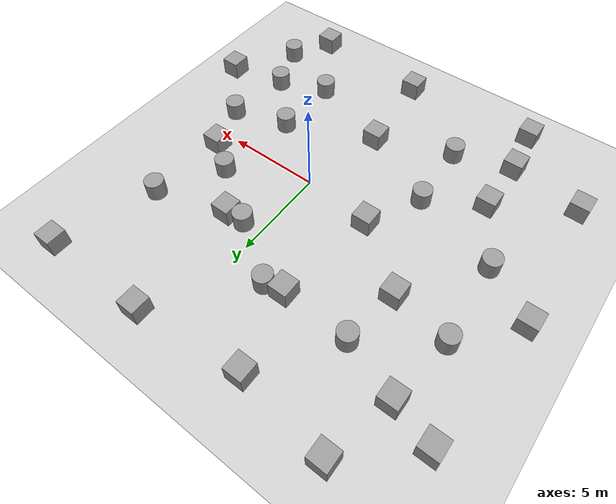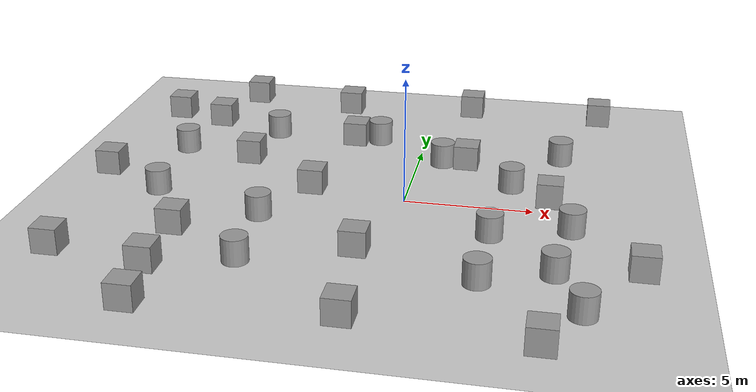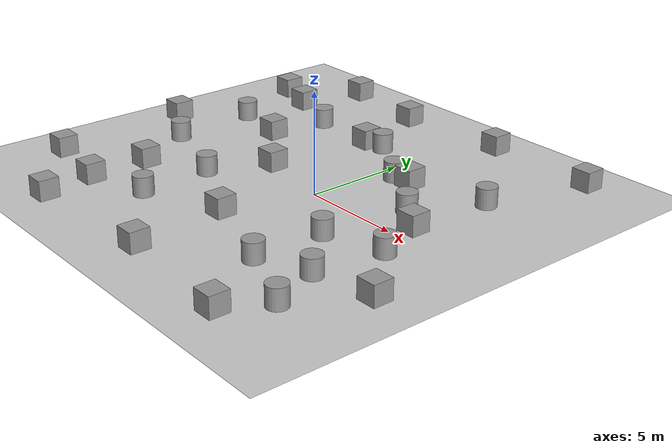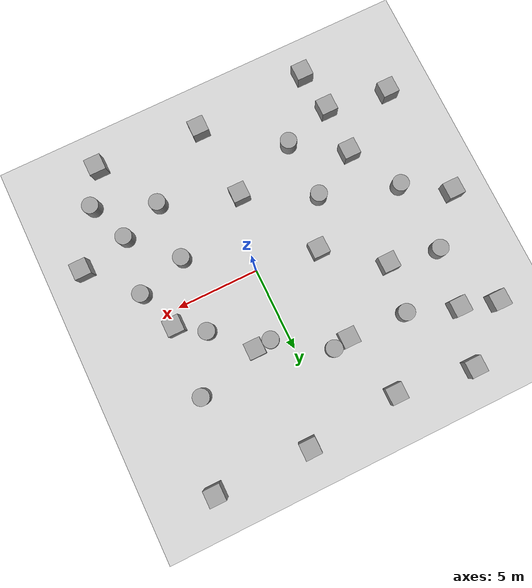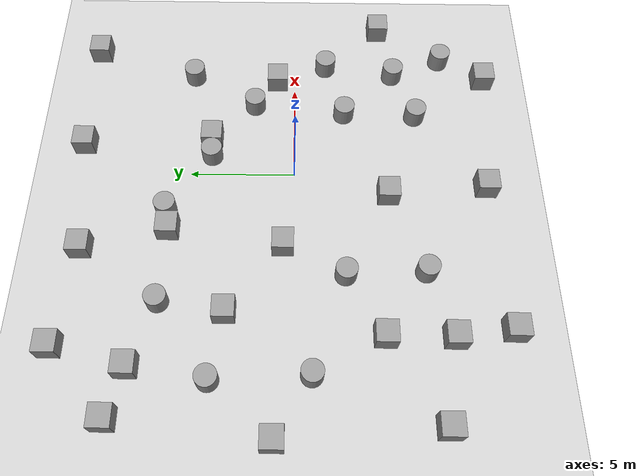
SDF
<sdf version="1.4">
 <world name="default">
  <light name="sun" type="directional">
   <pose>0 0 10 0 -0 0</pose>
   <diffuse>0.8 0.8 0.8 1</diffuse>
   <specular>0.2 0.2 0.2 1</specular>
   <attenuation>
    <range>1000</range>
    <constant>0.9</constant>
    <linear>0.01</linear>
    <quadratic>0.001</quadratic>
   </attenuation>
   <direction>-0.5 0.1 -0.9</direction>
  </light>
  <model name="ground_plane">
   <static>1</static>
   <link name="link">
    <collision name="collision">
     <geometry><plane><normal>0 0 1</normal><size>100 100</size></plane></geometry>
     <surface><friction><ode><mu>100</mu><mu2>50</mu2></ode></friction></surface>
    </collision>
    <visual name="visual">
     <cast_shadows>0</cast_shadows>
     <geometry><plane><normal>0 0 1</normal><size>100 100</size></plane></geometry>
     <material>
      <script><uri>file://media/materials/scripts/gazebo.material</uri><name>Gazebo/Grey</name></script>
     </material>
    </visual>
    <velocity_decay><linear>0</linear><angular>0</angular></velocity_decay>
   </link>
  </model>
  <physics type="ode">
   <max_step_size>0.001</max_step_size>
   <real_time_factor>1</real_time_factor>
   <real_time_update_rate>1000</real_time_update_rate>
   <gravity>0 0 -9.8</gravity>
  </physics>
  <scene><ambient>0.4 0.4 0.4 1</ambient><background>0.7 0.7 0.7 1</background><shadows>1</shadows></scene>
  <spherical_coordinates>
   <surface_model>EARTH_WGS84</surface_model>
   <latitude_deg>0</latitude_deg>
   <longitude_deg>0</longitude_deg>
   <elevation>0</elevation>
   <heading_deg>0</heading_deg>
  </spherical_coordinates>
  <model name="unit_box_1">
   <pose>5.56269 0.896213 0.499769 -6.61744e-24 6.7e-05 0.000582</pose>
   <link name="link">
    <inertial>
     <mass>1</mass>
     <inertia><ixx>1</ixx><ixy>0</ixy><ixz>0</ixz><iyy>1</iyy><iyz>0</iyz><izz>1</izz></inertia>
    </inertial>
    <collision name="collision"><geometry><box><size>6.923 1 1</size></box></geometry></collision>
    <visual name="visual">
     <geometry><box><size>1 1 1</size></box></geometry>
     <material>
      <script><uri>file://media/materials/scripts/gazebo.material</uri><name>Gazebo/Grey</name></script>
     </material>
    </visual>
    <velocity_decay><linear>0</linear><angular>0</angular></velocity_decay>
   </link>
   <static>0</static>
  </model>
  <model name="unit_box_2">
   <pose>1.99435 4.05582 0.499997 1e-06 -1e-06 -0.002899</pose>
   <link name="link">
    <inertial>
     <mass>1</mass>
     <inertia><ixx>1</ixx><ixy>0</ixy><ixz>0</ixz><iyy>1</iyy><iyz>0</iyz><izz>1</izz></inertia>
    </inertial>
    <collision name="collision"><geometry><box><size>1 5.30581 1</size></box></geometry></collision>
    <visual name="visual">
     <geometry><box><size>1 1 1</size></box></geometry>
     <material>
      <script><uri>file://media/materials/scripts/gazebo.material</uri><name>Gazebo/Grey</name></script>
     </material>
    </visual>
    <velocity_decay><linear>0</linear><angular>0</angular></velocity_decay>
   </link>
   <static>0</static>
  </model>
  <model name="unit_cylinder_1">
   <pose>5.80559 5.16782 0.499996 0 -0 0</pose>
   <link name="link">
    <inertial>
     <mass>1</mass>
     <inertia><ixx>1</ixx><ixy>0</ixy><ixz>0</ixz><iyy>1</iyy><iyz>0</iyz><izz>1</izz></inertia>
    </inertial>
    <collision name="collision">
     <geometry><cylinder><radius>1.29363</radius><length>1</length></cylinder></geometry>
    </collision>
    <visual name="visual">
     <geometry><cylinder><radius>0.5</radius><length>1</length></cylinder></geometry>
     <material>
      <script><uri>file://media/materials/scripts/gazebo.material</uri><name>Gazebo/Grey</name></script>
     </material>
    </visual>
    <velocity_decay><linear>0</linear><angular>0</angular></velocity_decay>
   </link>
   <static>0</static>
  </model>
  <model name="unit_box_5">
   <pose>-3.02786 5.80999 0.499892 3.7e-05 3.30872e-24 0.000564</pose>
   <link name="link">
    <inertial>
     <mass>1</mass>
     <inertia><ixx>1</ixx><ixy>0</ixy><ixz>0</ixz><iyy>1</iyy><iyz>0</iyz><izz>1</izz></inertia>
    </inertial>
    <collision name="collision"><geometry><box><size>1 5.87983 1</size></box></geometry></collision>
    <visual name="visual">
     <geometry><box><size>1 1 1</size></box></geometry>
     <material>
      <script><uri>file://media/materials/scripts/gazebo.material</uri><name>Gazebo/Grey</name></script>
     </material>
    </visual>
    <velocity_decay><linear>0</linear><angular>0</angular></velocity_decay>
   </link>
   <static>0</static>
  </model>
  <model name="unit_box_6">
   <pose>-3.76232 0.489313 0.499815 -3.30872e-24 5.6e-05 0.000402</pose>
   <link name="link">
    <inertial>
     <mass>1</mass>
     <inertia><ixx>1</ixx><ixy>0</ixy><ixz>0</ixz><iyy>1</iyy><iyz>0</iyz><izz>1</izz></inertia>
    </inertial>
    <collision name="collision"><geometry><box><size>6.59321 1 1</size></box></geometry></collision>
    <visual name="visual">
     <geometry><box><size>1 1 1</size></box></geometry>
     <material>
      <script><uri>file://media/materials/scripts/gazebo.material</uri><name>Gazebo/Grey</name></script>
     </material>
    </visual>
    <velocity_decay><linear>0</linear><angular>0</angular></velocity_decay>
   </link>
   <static>0</static>
  </model>
  <model name="unit_cylinder_2">
   <pose>0.992912 3.99995 0.499997 0 -0 -3.7e-05</pose>
   <link name="link">
    <inertial>
     <mass>1</mass>
     <inertia><ixx>1</ixx><ixy>0</ixy><ixz>0</ixz><iyy>1</iyy><iyz>0</iyz><izz>1</izz></inertia>
    </inertial>
    <collision name="collision">
     <geometry><cylinder><radius>0.5</radius><length>1</length></cylinder></geometry>
    </collision>
    <visual name="visual">
     <geometry><cylinder><radius>0.5</radius><length>1</length></cylinder></geometry>
     <material>
      <script><uri>file://media/materials/scripts/gazebo.material</uri><name>Gazebo/Grey</name></script>
     </material>
    </visual>
    <velocity_decay><linear>0</linear><angular>0</angular></velocity_decay>
   </link>
   <static>0</static>
  </model>
  <model name="unit_cylinder_3">
   <pose>-2 6 0.499996 0 -0 0</pose>
   <link name="link">
    <inertial>
     <mass>1</mass>
     <inertia><ixx>1</ixx><ixy>0</ixy><ixz>0</ixz><iyy>1</iyy><iyz>0</iyz><izz>1</izz></inertia>
    </inertial>
    <collision name="collision">
     <geometry><cylinder><radius>0.5</radius><length>1</length></cylinder></geometry>
    </collision>
    <visual name="visual">
     <geometry><cylinder><radius>0.5</radius><length>1</length></cylinder></geometry>
     <material>
      <script><uri>file://media/materials/scripts/gazebo.material</uri><name>Gazebo/Grey</name></script>
     </material>
    </visual>
    <velocity_decay><linear>0</linear><angular>0</angular></velocity_decay>
   </link>
   <static>0</static>
  </model>
  <model name="unit_cylinder_4">
   <pose>-6.56996 5.96872 0.499998 0 -0 0</pose>
   <link name="link">
    <inertial>
     <mass>1</mass>
     <inertia><ixx>1</ixx><ixy>0</ixy><ixz>0</ixz><iyy>1</iyy><iyz>0</iyz><izz>1</izz></inertia>
    </inertial>
    <collision name="collision">
     <geometry><cylinder><radius>1.02801</radius><length>1</length></cylinder></geometry>
    </collision>
    <visual name="visual">
     <geometry><cylinder><radius>0.5</radius><length>1</length></cylinder></geometry>
     <material>
      <script><uri>file://media/materials/scripts/gazebo.material</uri><name>Gazebo/Grey</name></script>
     </material>
    </visual>
    <velocity_decay><linear>0</linear><angular>0</angular></velocity_decay>
   </link>
   <static>0</static>
  </model>
  <model name="unit_cylinder_5">
   <pose>-9.99621 3.54394 0.499998 1e-06 -1e-06 -0.014874</pose>
   <link name="link">
    <inertial>
     <mass>1</mass>
     <inertia><ixx>1</ixx><ixy>0</ixy><ixz>0</ixz><iyy>1</iyy><iyz>0</iyz><izz>1</izz></inertia>
    </inertial>
    <collision name="collision">
     <geometry><cylinder><radius>0.5</radius><length>1</length></cylinder></geometry>
    </collision>
    <visual name="visual">
     <geometry><cylinder><radius>0.5</radius><length>1</length></cylinder></geometry>
     <material>
      <script><uri>file://media/materials/scripts/gazebo.material</uri><name>Gazebo/Grey</name></script>
     </material>
    </visual>
    <velocity_decay><linear>0</linear><angular>0</angular></velocity_decay>
   </link>
   <static>0</static>
  </model>
  <model name="unit_cylinder_6">
   <pose>4 2 0.499996 0 -0 0</pose>
   <link name="link">
    <inertial>
     <mass>1</mass>
     <inertia><ixx>1</ixx><ixy>0</ixy><ixz>0</ixz><iyy>1</iyy><iyz>0</iyz><izz>1</izz></inertia>
    </inertial>
    <collision name="collision">
     <geometry><cylinder><radius>0.5</radius><length>1</length></cylinder></geometry>
    </collision>
    <visual name="visual">
     <geometry><cylinder><radius>0.5</radius><length>1</length></cylinder></geometry>
     <material>
      <script><uri>file://media/materials/scripts/gazebo.material</uri><name>Gazebo/Grey</name></script>
     </material>
    </visual>
    <velocity_decay><linear>0</linear><angular>0</angular></velocity_decay>
   </link>
   <static>0</static>
  </model>
  <model name="unit_box_8">
   <pose>8.98459 -4.34746 0.499069 0.000197 -1e-06 0.005392</pose>
   <link name="link">
    <inertial>
     <mass>1</mass>
     <inertia><ixx>1</ixx><ixy>0</ixy><ixz>0</ixz><iyy>1</iyy><iyz>0</iyz><izz>1</izz></inertia>
    </inertial>
    <collision name="collision"><geometry><box><size>1 9.46988 1</size></box></geometry></collision>
    <visual name="visual">
     <geometry><box><size>1 1 1</size></box></geometry>
     <material>
      <script><uri>file://media/materials/scripts/gazebo.material</uri><name>Gazebo/Grey</name></script>
     </material>
    </visual>
    <velocity_decay><linear>0</linear><angular>0</angular></velocity_decay>
   </link>
   <static>0</static>
  </model>
  <model name="unit_box_10">
   <pose>-1.05437 -4.46519 0.499995 0 -3e-06 0</pose>
   <link name="link">
    <inertial>
     <mass>1</mass>
     <inertia><ixx>1</ixx><ixy>0</ixy><ixz>0</ixz><iyy>1</iyy><iyz>0</iyz><izz>1</izz></inertia>
    </inertial>
    <collision name="collision"><geometry><box><size>3.4992 4.68026 1</size></box></geometry></collision>
    <visual name="visual">
     <geometry><box><size>1 1 1</size></box></geometry>
     <material>
      <script><uri>file://media/materials/scripts/gazebo.material</uri><name>Gazebo/Grey</name></script>
     </material>
    </visual>
    <velocity_decay><linear>0</linear><angular>0</angular></velocity_decay>
   </link>
   <static>0</static>
  </model>
  <model name="unit_cylinder_7">
   <pose>3.44985 -6 0.499999 0 -0 0</pose>
   <link name="link">
    <inertial>
     <mass>1</mass>
     <inertia><ixx>1</ixx><ixy>0</ixy><ixz>0</ixz><iyy>1</iyy><iyz>0</iyz><izz>1</izz></inertia>
    </inertial>
    <collision name="collision">
     <geometry><cylinder><radius>0.635547</radius><length>1</length></cylinder></geometry>
    </collision>
    <visual name="visual">
     <geometry><cylinder><radius>0.5</radius><length>1</length></cylinder></geometry>
     <material>
      <script><uri>file://media/materials/scripts/gazebo.material</uri><name>Gazebo/Grey</name></script>
     </material>
    </visual>
    <velocity_decay><linear>0</linear><angular>0</angular></velocity_decay>
   </link>
   <static>0</static>
  </model>
  <model name="unit_cylinder_8">
   <pose>6.47138 -1.55408 0.499991 -1e-06 0 0</pose>
   <link name="link">
    <inertial>
     <mass>1</mass>
     <inertia><ixx>1</ixx><ixy>0</ixy><ixz>0</ixz><iyy>1</iyy><iyz>0</iyz><izz>1</izz></inertia>
    </inertial>
    <collision name="collision">
     <geometry><cylinder><radius>0.5</radius><length>1</length></cylinder></geometry>
    </collision>
    <visual name="visual">
     <geometry><cylinder><radius>0.5</radius><length>1</length></cylinder></geometry>
     <material>
      <script><uri>file://media/materials/scripts/gazebo.material</uri><name>Gazebo/Grey</name></script>
     </material>
    </visual>
    <velocity_decay><linear>0</linear><angular>0</angular></velocity_decay>
   </link>
   <static>0</static>
  </model>
  <model name="unit_cylinder_9">
   <pose>3.54127 -2.45346 0.499998 0 -0 0</pose>
   <link name="link">
    <inertial>
     <mass>1</mass>
     <inertia><ixx>1</ixx><ixy>0</ixy><ixz>0</ixz><iyy>1</iyy><iyz>0</iyz><izz>1</izz></inertia>
    </inertial>
    <collision name="collision">
     <geometry><cylinder><radius>0.965776</radius><length>1</length></cylinder></geometry>
    </collision>
    <visual name="visual">
     <geometry><cylinder><radius>0.5</radius><length>1</length></cylinder></geometry>
     <material>
      <script><uri>file://media/materials/scripts/gazebo.material</uri><name>Gazebo/Grey</name></script>
     </material>
    </visual>
    <velocity_decay><linear>0</linear><angular>0</angular></velocity_decay>
   </link>
   <static>0</static>
  </model>
  <model name="unit_cylinder_10">
   <pose>6 -5 0.499992 0 -0 0</pose>
   <link name="link">
    <inertial>
     <mass>1</mass>
     <inertia><ixx>1</ixx><ixy>0</ixy><ixz>0</ixz><iyy>1</iyy><iyz>0</iyz><izz>1</izz></inertia>
    </inertial>
    <collision name="collision">
     <geometry><cylinder><radius>0.234478</radius><length>1</length></cylinder></geometry>
    </collision>
    <visual name="visual">
     <geometry><cylinder><radius>0.5</radius><length>1</length></cylinder></geometry>
     <material>
      <script><uri>file://media/materials/scripts/gazebo.material</uri><name>Gazebo/Grey</name></script>
     </material>
    </visual>
    <velocity_decay><linear>0</linear><angular>0</angular></velocity_decay>
   </link>
   <static>0</static>
  </model>
  <model name="unit_cylinder_11">
   <pose>7 -7.50407 0.499992 0 -0 0</pose>
   <link name="link">
    <inertial>
     <mass>1</mass>
     <inertia><ixx>1</ixx><ixy>0</ixy><ixz>0</ixz><iyy>1</iyy><iyz>0</iyz><izz>1</izz></inertia>
    </inertial>
    <collision name="collision">
     <geometry><cylinder><radius>0.345503</radius><length>1</length></cylinder></geometry>
    </collision>
    <visual name="visual">
     <geometry><cylinder><radius>0.5</radius><length>1</length></cylinder></geometry>
     <material>
      <script><uri>file://media/materials/scripts/gazebo.material</uri><name>Gazebo/Grey</name></script>
     </material>
    </visual>
    <velocity_decay><linear>0</linear><angular>0</angular></velocity_decay>
   </link>
   <static>0</static>
  </model>
  <model name="unit_box_11">
   <pose>-8 -7 0.5 0 -0 0</pose>
   <link name="link">
    <inertial>
     <mass>1</mass>
     <inertia><ixx>1</ixx><ixy>0</ixy><ixz>0</ixz><iyy>1</iyy><iyz>0</iyz><izz>1</izz></inertia>
    </inertial>
    <collision name="collision"><geometry><box><size>1 1 1</size></box></geometry></collision>
    <visual name="visual">
     <geometry><box><size>1 1 1</size></box></geometry>
     <material>
      <script><uri>file://media/materials/scripts/gazebo.material</uri><name>Gazebo/Grey</name></script>
     </material>
    </visual>
    <velocity_decay><linear>0</linear><angular>0</angular></velocity_decay>
   </link>
   <static>0</static>
  </model>
  <model name="unit_box_12">
   <pose>-8 -4 0.5 0 -0 0</pose>
   <link name="link">
    <inertial>
     <mass>1</mass>
     <inertia><ixx>1</ixx><ixy>0</ixy><ixz>0</ixz><iyy>1</iyy><iyz>0</iyz><izz>1</izz></inertia>
    </inertial>
    <collision name="collision"><geometry><box><size>1 1 1</size></box></geometry></collision>
    <visual name="visual">
     <geometry><box><size>1 1 1</size></box></geometry>
     <material>
      <script><uri>file://media/materials/scripts/gazebo.material</uri><name>Gazebo/Grey</name></script>
     </material>
    </visual>
    <velocity_decay><linear>0</linear><angular>0</angular></velocity_decay>
   </link>
   <static>0</static>
  </model>
  <model name="unit_cylinder_12">
   <pose>-5 -6 0.499991 0 -0 0</pose>
   <link name="link">
    <inertial>
     <mass>1</mass>
     <inertia><ixx>1</ixx><ixy>0</ixy><ixz>0</ixz><iyy>1</iyy><iyz>0</iyz><izz>1</izz></inertia>
    </inertial>
    <collision name="collision">
     <geometry><cylinder><radius>0.265408</radius><length>1</length></cylinder></geometry>
    </collision>
    <visual name="visual">
     <geometry><cylinder><radius>0.5</radius><length>1</length></cylinder></geometry>
     <material>
      <script><uri>file://media/materials/scripts/gazebo.material</uri><name>Gazebo/Grey</name></script>
     </material>
    </visual>
    <velocity_decay><linear>0</linear><angular>0</angular></velocity_decay>
   </link>
   <static>0</static>
  </model>
  <model name="unit_cylinder_13">
   <pose>-5.18956 -2.36303 0.499992 0 -0 0</pose>
   <link name="link">
    <inertial>
     <mass>1</mass>
     <inertia><ixx>1</ixx><ixy>0</ixy><ixz>0</ixz><iyy>1</iyy><iyz>0</iyz><izz>1</izz></inertia>
    </inertial>
    <collision name="collision">
     <geometry><cylinder><radius>0.975915</radius><length>1</length></cylinder></geometry>
    </collision>
    <visual name="visual">
     <geometry><cylinder><radius>0.5</radius><length>1</length></cylinder></geometry>
     <material>
      <script><uri>file://media/materials/scripts/gazebo.material</uri><name>Gazebo/Grey</name></script>
     </material>
    </visual>
    <velocity_decay><linear>0</linear><angular>0</angular></velocity_decay>
   </link>
   <static>0</static>
  </model>
  <model name="unit_box_13">
   <pose>5.79225 -9.63291 0.499901 0 -3.4e-05 1e-05</pose>
   <link name="link">
    <inertial>
     <mass>1</mass>
     <inertia><ixx>1</ixx><ixy>0</ixy><ixz>0</ixz><iyy>1</iyy><iyz>0</iyz><izz>1</izz></inertia>
    </inertial>
    <collision name="collision"><geometry><box><size>5.7725 1 1</size></box></geometry></collision>
    <visual name="visual">
     <geometry><box><size>1 1 1</size></box></geometry>
     <material>
      <script><uri>file://media/materials/scripts/gazebo.material</uri><name>Gazebo/Grey</name></script>
     </material>
    </visual>
    <velocity_decay><linear>0</linear><angular>0</angular></velocity_decay>
   </link>
   <static>0</static>
  </model>
  <model name="unit_box_14">
   <pose>-0.590233 -9.1459 0.499777 0 6.5e-05 -0.000206</pose>
   <link name="link">
    <inertial>
     <mass>1</mass>
     <inertia><ixx>1</ixx><ixy>0</ixy><ixz>0</ixz><iyy>1</iyy><iyz>0</iyz><izz>1</izz></inertia>
    </inertial>
    <collision name="collision"><geometry><box><size>6.86599 1 1</size></box></geometry></collision>
    <visual name="visual">
     <geometry><box><size>1 1 1</size></box></geometry>
     <material>
      <script><uri>file://media/materials/scripts/gazebo.material</uri><name>Gazebo/Grey</name></script>
     </material>
    </visual>
    <velocity_decay><linear>0</linear><angular>0</angular></velocity_decay>
   </link>
   <static>0</static>
  </model>
  <model name="unit_box_15">
   <pose>-7.65245 -9.58776 0.499724 6.61744e-24 -7.7e-05 -0.000351</pose>
   <link name="link">
    <inertial>
     <mass>1</mass>
     <inertia><ixx>1</ixx><ixy>0</ixy><ixz>0</ixz><iyy>1</iyy><iyz>0</iyz><izz>1</izz></inertia>
    </inertial>
    <collision name="collision"><geometry><box><size>7.19847 1 1</size></box></geometry></collision>
    <visual name="visual">
     <geometry><box><size>1 1 1</size></box></geometry>
     <material>
      <script><uri>file://media/materials/scripts/gazebo.material</uri><name>Gazebo/Grey</name></script>
     </material>
    </visual>
    <velocity_decay><linear>0</linear><angular>0</angular></velocity_decay>
   </link>
   <static>0</static>
  </model>
  <model name="unit_box_16">
   <pose>-11.768 -6.39091 0.499784 -6.3e-05 -0 0.000163</pose>
   <link name="link">
    <inertial>
     <mass>1</mass>
     <inertia><ixx>1</ixx><ixy>0</ixy><ixz>0</ixz><iyy>1</iyy><iyz>0</iyz><izz>1</izz></inertia>
    </inertial>
    <collision name="collision"><geometry><box><size>1 6.82156 1</size></box></geometry></collision>
    <visual name="visual">
     <geometry><box><size>1 1 1</size></box></geometry>
     <material>
      <script><uri>file://media/materials/scripts/gazebo.material</uri><name>Gazebo/Grey</name></script>
     </material>
    </visual>
    <velocity_decay><linear>0</linear><angular>0</angular></velocity_decay>
   </link>
   <static>0</static>
  </model>
  <model name="unit_box_17">
   <pose>-12.3549 0.783006 0.5 0 -0 0.000414</pose>
   <link name="link">
    <inertial>
     <mass>1</mass>
     <inertia><ixx>1</ixx><ixy>0</ixy><ixz>0</ixz><iyy>1</iyy><iyz>0</iyz><izz>1</izz></inertia>
    </inertial>
    <collision name="collision"><geometry><box><size>1 7.46503 1</size></box></geometry></collision>
    <visual name="visual">
     <geometry><box><size>1 1 1</size></box></geometry>
     <material>
      <script><uri>file://media/materials/scripts/gazebo.material</uri><name>Gazebo/Grey</name></script>
     </material>
    </visual>
    <velocity_decay><linear>0</linear><angular>0</angular></velocity_decay>
   </link>
   <static>0</static>
  </model>
  <model name="unit_box_18">
   <pose>-11.637 7.65072 0.499855 4.6e-05 4.1359e-25 4.1e-05</pose>
   <link name="link">
    <inertial>
     <mass>1</mass>
     <inertia><ixx>1</ixx><ixy>0</ixy><ixz>0</ixz><iyy>1</iyy><iyz>0</iyz><izz>1</izz></inertia>
    </inertial>
    <collision name="collision"><geometry><box><size>1 6.25917 1</size></box></geometry></collision>
    <visual name="visual">
     <geometry><box><size>1 1 1</size></box></geometry>
     <material>
      <script><uri>file://media/materials/scripts/gazebo.material</uri><name>Gazebo/Grey</name></script>
     </material>
    </visual>
    <velocity_decay><linear>0</linear><angular>0</angular></velocity_decay>
   </link>
   <static>0</static>
  </model>
  <model name="unit_box_19">
   <pose>-7 3 0.5 0 -0 0</pose>
   <link name="link">
    <inertial>
     <mass>1</mass>
     <inertia><ixx>1</ixx><ixy>0</ixy><ixz>0</ixz><iyy>1</iyy><iyz>0</iyz><izz>1</izz></inertia>
    </inertial>
    <collision name="collision"><geometry><box><size>1.51907 0.432299 1</size></box></geometry></collision>
    <visual name="visual">
     <geometry><box><size>1 1 1</size></box></geometry>
     <material>
      <script><uri>file://media/materials/scripts/gazebo.material</uri><name>Gazebo/Grey</name></script>
     </material>
    </visual>
    <velocity_decay><linear>0</linear><angular>0</angular></velocity_decay>
   </link>
   <static>0</static>
  </model>
  <model name="unit_box_20">
   <pose>-8.63826 10.3589 0.5 0 -0 0</pose>
   <link name="link">
    <inertial>
     <mass>1</mass>
     <inertia><ixx>1</ixx><ixy>0</ixy><ixz>0</ixz><iyy>1</iyy><iyz>0</iyz><izz>1</izz></inertia>
    </inertial>
    <collision name="collision"><geometry><box><size>4.97318 1 1</size></box></geometry></collision>
    <visual name="visual">
     <geometry><box><size>1 1 1</size></box></geometry>
     <material>
      <script><uri>file://media/materials/scripts/gazebo.material</uri><name>Gazebo/Grey</name></script>
     </material>
    </visual>
    <velocity_decay><linear>0</linear><angular>0</angular></velocity_decay>
   </link>
   <static>0</static>
  </model>
  <model name="unit_box_21">
   <pose>-4.00113 9.72675 0.499995 5e-06 -0 0</pose>
   <link name="link">
    <inertial>
     <mass>1</mass>
     <inertia><ixx>1</ixx><ixy>0</ixy><ixz>0</ixz><iyy>1</iyy><iyz>0</iyz><izz>1</izz></inertia>
    </inertial>
    <collision name="collision"><geometry><box><size>4.28565 1.9316 1</size></box></geometry></collision>
    <visual name="visual">
     <geometry><box><size>1 1 1</size></box></geometry>
     <material>
      <script><uri>file://media/materials/scripts/gazebo.material</uri><name>Gazebo/Grey</name></script>
     </material>
    </visual>
    <velocity_decay><linear>0</linear><angular>0</angular></velocity_decay>
   </link>
   <static>0</static>
  </model>
  <model name="unit_box_22">
   <pose>1.59761 10.2811 0.499778 0 6.5e-05 -8.2e-05</pose>
   <link name="link">
    <inertial>
     <mass>1</mass>
     <inertia><ixx>1</ixx><ixy>0</ixy><ixz>0</ixz><iyy>1</iyy><iyz>0</iyz><izz>1</izz></inertia>
    </inertial>
    <collision name="collision"><geometry><box><size>6.86372 1 1</size></box></geometry></collision>
    <visual name="visual">
     <geometry><box><size>1 1 1</size></box></geometry>
     <material>
      <script><uri>file://media/materials/scripts/gazebo.material</uri><name>Gazebo/Grey</name></script>
     </material>
    </visual>
    <velocity_decay><linear>0</linear><angular>0</angular></velocity_decay>
   </link>
   <static>0</static>
  </model>
  <model name="unit_box_23">
   <pose>7.33885 10.2263 0.499995 -3e-06 0 0</pose>
   <link name="link">
    <inertial>
     <mass>1</mass>
     <inertia><ixx>1</ixx><ixy>0</ixy><ixz>0</ixz><iyy>1</iyy><iyz>0</iyz><izz>1</izz></inertia>
    </inertial>
    <collision name="collision"><geometry><box><size>4.57133 2.93521 1</size></box></geometry></collision>
    <visual name="visual">
     <geometry><box><size>1 1 1</size></box></geometry>
     <material>
      <script><uri>file://media/materials/scripts/gazebo.material</uri><name>Gazebo/Grey</name></script>
     </material>
    </visual>
    <velocity_decay><linear>0</linear><angular>0</angular></velocity_decay>
   </link>
   <static>0</static>
  </model>
  <model name="unit_box_24">
   <pose>-9.46943 7 0.499998 2e-06 -0 -0.000231</pose>
   <link name="link">
    <inertial>
     <mass>1</mass>
     <inertia><ixx>1</ixx><ixy>0</ixy><ixz>0</ixz><iyy>1</iyy><iyz>0</iyz><izz>1</izz></inertia>
    </inertial>
    <collision name="collision"><geometry><box><size>0.330897 2.38292 1</size></box></geometry></collision>
    <visual name="visual">
     <geometry><box><size>1 1 1</size></box></geometry>
     <material>
      <script><uri>file://media/materials/scripts/gazebo.material</uri><name>Gazebo/Grey</name></script>
     </material>
    </visual>
    <velocity_decay><linear>0</linear><angular>0</angular></velocity_decay>
   </link>
   <static>0</static>
  </model>
  <model name="unit_cylinder_14">
   <pose>-9.73685 -0.840075 0.499995 1e-06 -1e-06 0</pose>
   <link name="link">
    <inertial>
     <mass>1</mass>
     <inertia><ixx>1</ixx><ixy>0</ixy><ixz>0</ixz><iyy>1</iyy><iyz>0</iyz><izz>1</izz></inertia>
    </inertial>
    <collision name="collision">
     <geometry><cylinder><radius>0.823309</radius><length>1</length></cylinder></geometry>
    </collision>
    <visual name="visual">
     <geometry><cylinder><radius>0.5</radius><length>1</length></cylinder></geometry>
     <material>
      <script><uri>file://media/materials/scripts/gazebo.material</uri><name>Gazebo/Grey</name></script>
     </material>
    </visual>
    <velocity_decay><linear>0</linear><angular>0</angular></velocity_decay>
   </link>
   <static>0</static>
  </model>
 </world>
</sdf>
